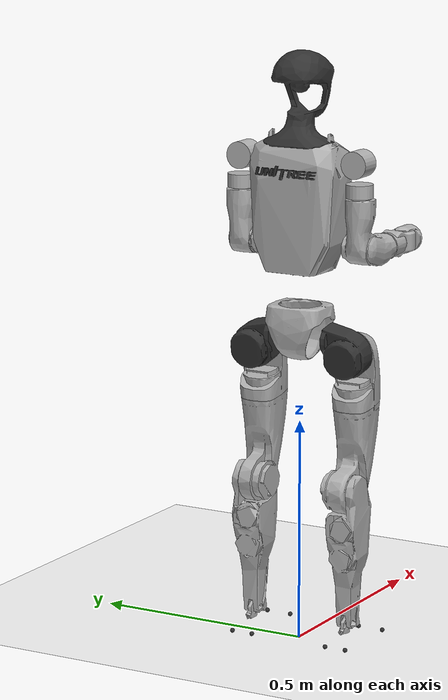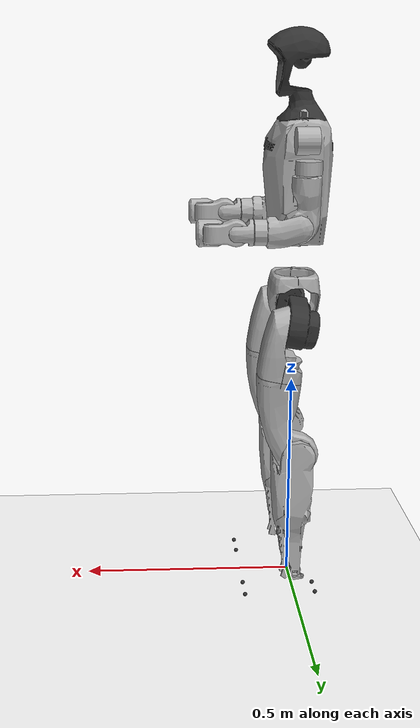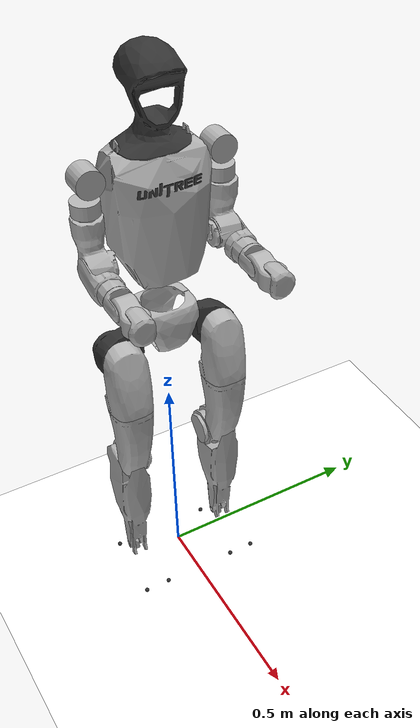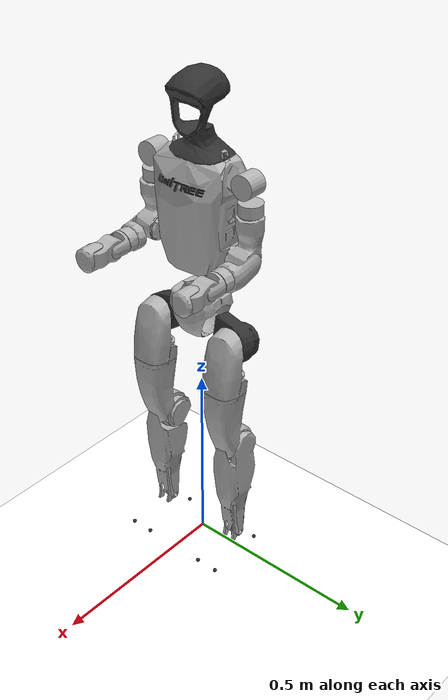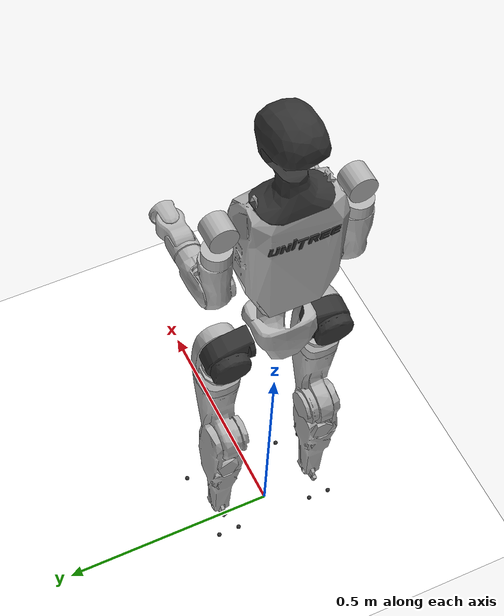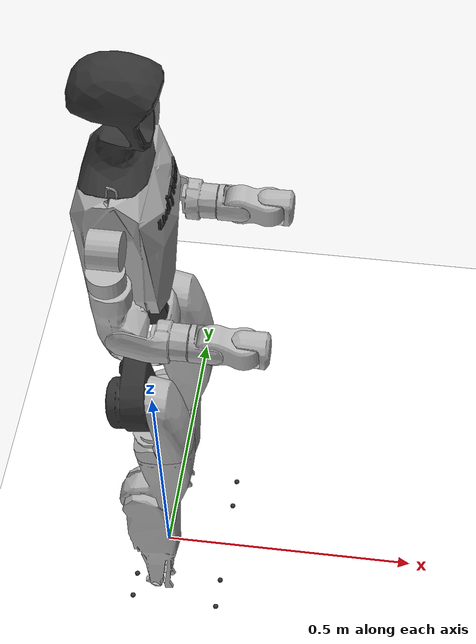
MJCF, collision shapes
<mujoco model="g1_29dof_whole_body">
  <!-- base on g1_29dof_rev_1_0 -->
  <compiler angle="radian" meshdir="../meshes"/>

  <statistic meansize="0.144785" extent="1.23314" center="0.025392 2.0634e-05 -0.245975"/>
  <default>
    <joint damping="0.001" armature="0.01" frictionloss="0.1"/>
  </default>

  <asset>
    <mesh name="pelvis" file="pelvis.STL"/>
    <mesh name="pelvis_contour_link" file="pelvis_contour_link.STL"/>
    <mesh name="left_hip_pitch_link" file="left_hip_pitch_link.STL"/>
    <mesh name="left_hip_roll_link" file="left_hip_roll_link.STL"/>
    <mesh name="left_hip_yaw_link" file="left_hip_yaw_link.STL"/>
    <mesh name="left_knee_link" file="left_knee_link.STL"/>
    <mesh name="left_ankle_pitch_link" file="left_ankle_pitch_link.STL"/>
    <mesh name="left_ankle_roll_link" file="left_ankle_roll_link.STL"/>
    <mesh name="right_hip_pitch_link" file="right_hip_pitch_link.STL"/>
    <mesh name="right_hip_roll_link" file="right_hip_roll_link.STL"/>
    <mesh name="right_hip_yaw_link" file="right_hip_yaw_link.STL"/>
    <mesh name="right_knee_link" file="right_knee_link.STL"/>
    <mesh name="right_ankle_pitch_link" file="right_ankle_pitch_link.STL"/>
    <mesh name="right_ankle_roll_link" file="right_ankle_roll_link.STL"/>
    <mesh name="waist_yaw_link" file="waist_yaw_link_rev_1_0.STL"/>
    <mesh name="waist_roll_link" file="waist_roll_link_rev_1_0.STL"/>
    <mesh name="torso_link" file="torso_link_rev_1_0.STL"/>
    <mesh name="logo_link" file="logo_link.STL"/>
    <mesh name="head_link" file="head_link.STL"/>
    <mesh name="left_shoulder_pitch_link" file="left_shoulder_pitch_link.STL"/>
    <mesh name="left_shoulder_roll_link" file="left_shoulder_roll_link.STL"/>
    <mesh name="left_shoulder_yaw_link" file="left_shoulder_yaw_link.STL"/>
    <mesh name="left_elbow_link" file="left_elbow_link.STL"/>
    <mesh name="left_wrist_roll_link" file="left_wrist_roll_link.STL"/>
    <mesh name="left_wrist_pitch_link" file="left_wrist_pitch_link.STL"/>
    <mesh name="left_wrist_yaw_link" file="left_wrist_yaw_link.STL"/>
    <mesh name="left_rubber_hand" file="left_rubber_hand.STL"/>
    <mesh name="right_shoulder_pitch_link" file="right_shoulder_pitch_link.STL"/>
    <mesh name="right_shoulder_roll_link" file="right_shoulder_roll_link.STL"/>
    <mesh name="right_shoulder_yaw_link" file="right_shoulder_yaw_link.STL"/>
    <mesh name="right_elbow_link" file="right_elbow_link.STL"/>
    <mesh name="right_wrist_roll_link" file="right_wrist_roll_link.STL"/>
    <mesh name="right_wrist_pitch_link" file="right_wrist_pitch_link.STL"/>
    <mesh name="right_wrist_yaw_link" file="right_wrist_yaw_link.STL"/>
    <mesh name="right_rubber_hand" file="right_rubber_hand.STL"/>
  </asset>

  <visual>
    <headlight diffuse="0.6 0.6 0.6" ambient="0.3 0.3 0.3" specular="0 0 0"/>
    <global azimuth="-130" elevation="-20"/>
  </visual>

   <asset>
    <texture type="skybox" builtin="gradient" rgb1="1 1 1" rgb2="1 1 1" width="512" height="3072"/>
    <texture type="2d" name="groundplane" builtin="checker" mark="edge" rgb1="1 1 1" rgb2="1 1 1"
      markrgb="0 0 0" width="300" height="300"/>
    <material name="groundplane" texture="groundplane" texuniform="true" texrepeat="5 5" reflectance="0.2"/>
  </asset>

  <worldbody>
    <light pos="0 0 1.5" dir="0 0 -1" directional="true"/>
    <geom name="floor" size="0 0 0.05" type="plane" material="groundplane"/>

    <body name="robot" pos="0 0 0.793">
      <inertial pos="0 0 -0.07605" quat="1 0 -0.000399148 0" mass="3.813" diaginertia="0.010549 0.0093089 0.0079184"/>

      <geom type="mesh" contype="0" conaffinity="0" group="1" density="0" rgba="0.2 0.2 0.2 1" mesh="pelvis"/>
      <geom type="mesh" contype="0" conaffinity="0" group="1" density="0" rgba="0.7 0.7 0.7 1" mesh="pelvis_contour_link"/>
      <geom type="mesh" rgba="0.7 0.7 0.7 1" mesh="pelvis_contour_link"/>
      <site name="imu_in_pelvis" size="0.01" pos="0.04525 0 -0.08339"/>
      <body name="left_hip_pitch_link" pos="0 0.064452 -0.1027">
        <inertial pos="0.002741 0.047791 -0.02606" quat="0.954862 0.293964 0.0302556 0.030122" mass="1.35" diaginertia="0.00181517 0.00153422 0.00116212"/>
        <joint name="left_hip_pitch_joint" pos="0 0 0" axis="0 1 0" range="-2.5307 2.8798" actuatorfrcrange="-88 88"/>
        <geom type="mesh" contype="0" conaffinity="0" group="1" density="0" rgba="0.2 0.2 0.2 1" mesh="left_hip_pitch_link"/>
        <geom type="mesh" rgba="0.2 0.2 0.2 1" mesh="left_hip_pitch_link"/>
        <body name="left_hip_roll_link" pos="0 0.052 -0.030465" quat="0.996179 0 -0.0873386 0">
          <inertial pos="0.029812 -0.001045 -0.087934" quat="0.977808 -1.97119e-05 0.205576 -0.0403793" mass="1.52" diaginertia="0.00254986 0.00241169 0.00148755"/>
          <joint name="left_hip_roll_joint" pos="0 0 0" axis="1 0 0" range="-0.5236 2.9671" actuatorfrcrange="-139 139"/>
          <geom type="mesh" contype="0" conaffinity="0" group="1" density="0" rgba="0.7 0.7 0.7 1" mesh="left_hip_roll_link"/>
          <geom type="mesh" rgba="0.7 0.7 0.7 1" mesh="left_hip_roll_link"/>
          <body name="left_hip_yaw_link" pos="0.025001 0 -0.12412">
            <inertial pos="-0.057709 -0.010981 -0.15078" quat="0.600598 0.15832 0.223482 0.751181" mass="1.702" diaginertia="0.00776166 0.00717575 0.00160139"/>
            <joint name="left_hip_yaw_joint" pos="0 0 0" axis="0 0 1" range="-2.7576 2.7576" actuatorfrcrange="-88 88"/>
            <geom type="mesh" contype="0" conaffinity="0" group="1" density="0" rgba="0.7 0.7 0.7 1" mesh="left_hip_yaw_link"/>
            <geom type="mesh" rgba="0.7 0.7 0.7 1" mesh="left_hip_yaw_link"/>
            <body name="left_knee_link" pos="-0.078273 0.0021489 -0.17734" quat="0.996179 0 0.0873386 0">
              <inertial pos="0.005457 0.003964 -0.12074" quat="0.923418 -0.0327699 0.0158246 0.382067" mass="1.932" diaginertia="0.0113804 0.0112778 0.00146458"/>
              <joint name="left_knee_joint" pos="0 0 0" axis="0 1 0" range="-0.087267 2.8798" actuatorfrcrange="-139 139"/>
              <geom type="mesh" contype="0" conaffinity="0" group="1" density="0" rgba="0.7 0.7 0.7 1" mesh="left_knee_link"/>
              <geom type="mesh" rgba="0.7 0.7 0.7 1" mesh="left_knee_link"/>
              <body name="left_ankle_pitch_link" pos="0 -9.4445e-05 -0.30001">
                <inertial pos="-0.007269 0 0.011137" quat="0.603053 0.369225 0.369225 0.603053" mass="0.074" diaginertia="1.89e-05 1.40805e-05 6.9195e-06"/>
                <joint name="left_ankle_pitch_joint" pos="0 0 0" axis="0 1 0" range="-0.87267 0.5236" actuatorfrcrange="-50 50"/>
                <geom type="mesh" contype="0" conaffinity="0" group="1" density="0" rgba="0.7 0.7 0.7 1" mesh="left_ankle_pitch_link"/>
                <geom type="mesh" rgba="0.7 0.7 0.7 1" mesh="left_ankle_pitch_link"/>
                <body name="left_ankle_roll_link" pos="0 0 -0.017558">
                  <inertial pos="0.026505 0 -0.016425" quat="-0.000481092 0.728482 -0.000618967 0.685065" mass="0.608" diaginertia="0.00167218 0.0016161 0.000217621"/>
                  <joint name="left_ankle_roll_joint" pos="0 0 0" axis="1 0 0" range="-0.2618 0.2618" actuatorfrcrange="-50 50"/>
                  <geom type="mesh" contype="0" conaffinity="0" group="1" density="0" rgba="0.2 0.2 0.2 1" mesh="left_ankle_roll_link"/>
                  <body name="bl_left_foot" pos="-0.05 0.025 -0.03">
                    <geom size="0.005" pos="0.0 0.0 0.0" rgba="0.2 0.2 0.2 1"/>
                  </body>
                  <body name="br_left_foot" pos="-0.05 -0.025 -0.03">
                    <geom size="0.005" pos="0.0 0.0 0.0" rgba="0.2 0.2 0.2 1"/>
                  </body>
                  <body name="fl_left_foot" pos="0.12 0.03 -0.03">
                    <geom size="0.005" pos="0.0 0.0 0.0" rgba="0.2 0.2 0.2 1"/>
                  </body>
                  <body name="fr_left_foot" pos="0.12 -0.03 -0.03">
                    <geom size="0.005" pos="0.0 0.0 0.0" rgba="0.2 0.2 0.2 1"/>
                  </body>
                </body>
              </body>
            </body>
          </body>
        </body>
      </body>
      <body name="right_hip_pitch_link" pos="0 -0.064452 -0.1027">
        <inertial pos="0.002741 -0.047791 -0.02606" quat="0.954862 -0.293964 0.0302556 -0.030122" mass="1.35" diaginertia="0.00181517 0.00153422 0.00116212"/>
        <joint name="right_hip_pitch_joint" pos="0 0 0" axis="0 1 0" range="-2.5307 2.8798" actuatorfrcrange="-88 88"/>
        <geom type="mesh" contype="0" conaffinity="0" group="1" density="0" rgba="0.2 0.2 0.2 1" mesh="right_hip_pitch_link"/>
        <geom type="mesh" rgba="0.2 0.2 0.2 1" mesh="right_hip_pitch_link"/>
        <body name="right_hip_roll_link" pos="0 -0.052 -0.030465" quat="0.996179 0 -0.0873386 0">
          <inertial pos="0.029812 0.001045 -0.087934" quat="0.977808 1.97119e-05 0.205576 0.0403793" mass="1.52" diaginertia="0.00254986 0.00241169 0.00148755"/>
          <joint name="right_hip_roll_joint" pos="0 0 0" axis="1 0 0" range="-2.9671 0.5236" actuatorfrcrange="-139 139"/>
          <geom type="mesh" contype="0" conaffinity="0" group="1" density="0" rgba="0.7 0.7 0.7 1" mesh="right_hip_roll_link"/>
          <geom type="mesh" rgba="0.7 0.7 0.7 1" mesh="right_hip_roll_link"/>
          <body name="right_hip_yaw_link" pos="0.025001 0 -0.12412">
            <inertial pos="-0.057709 0.010981 -0.15078" quat="0.751181 0.223482 0.15832 0.600598" mass="1.702" diaginertia="0.00776166 0.00717575 0.00160139"/>
            <joint name="right_hip_yaw_joint" pos="0 0 0" axis="0 0 1" range="-2.7576 2.7576" actuatorfrcrange="-88 88"/>
            <geom type="mesh" contype="0" conaffinity="0" group="1" density="0" rgba="0.7 0.7 0.7 1" mesh="right_hip_yaw_link"/>
            <geom type="mesh" rgba="0.7 0.7 0.7 1" mesh="right_hip_yaw_link"/>
            <body name="right_knee_link" pos="-0.078273 -0.0021489 -0.17734" quat="0.996179 0 0.0873386 0">
              <inertial pos="0.005457 -0.003964 -0.12074" quat="0.923439 0.0345276 0.0116333 -0.382012" mass="1.932" diaginertia="0.011374 0.0112843 0.00146452"/>
              <joint name="right_knee_joint" pos="0 0 0" axis="0 1 0" range="-0.087267 2.8798" actuatorfrcrange="-139 139"/>
              <geom type="mesh" contype="0" conaffinity="0" group="1" density="0" rgba="0.7 0.7 0.7 1" mesh="right_knee_link"/>
              <geom type="mesh" rgba="0.7 0.7 0.7 1" mesh="right_knee_link"/>
              <body name="right_ankle_pitch_link" pos="0 9.4445e-05 -0.30001">
                <inertial pos="-0.007269 0 0.011137" quat="0.603053 0.369225 0.369225 0.603053" mass="0.074" diaginertia="1.89e-05 1.40805e-05 6.9195e-06"/>
                <joint name="right_ankle_pitch_joint" pos="0 0 0" axis="0 1 0" range="-0.87267 0.5236" actuatorfrcrange="-50 50"/>
                <geom type="mesh" contype="0" conaffinity="0" group="1" density="0" rgba="0.7 0.7 0.7 1" mesh="right_ankle_pitch_link"/>
                <geom type="mesh" rgba="0.7 0.7 0.7 1" mesh="right_ankle_pitch_link"/>
                <body name="right_ankle_roll_link" pos="0 0 -0.017558">
                  <inertial pos="0.026505 0 -0.016425" quat="0.000481092 0.728482 0.000618967 0.685065" mass="0.608" diaginertia="0.00167218 0.0016161 0.000217621"/>
                  <joint name="right_ankle_roll_joint" pos="0 0 0" axis="1 0 0" range="-0.2618 0.2618" actuatorfrcrange="-50 50"/>
                  <geom type="mesh" contype="0" conaffinity="0" group="1" density="0" rgba="0.2 0.2 0.2 1" mesh="right_ankle_roll_link"/>
                  <body name="bl_right_foot" pos="-0.05 0.025 -0.03">
                    <geom size="0.005" pos="0.0 0.0 0.0" rgba="0.2 0.2 0.2 1"/>
                  </body>
                  <body name="br_right_foot" pos="-0.05 -0.025 -0.03">
                    <geom size="0.005" pos="0.0 0.0 0.0" rgba="0.2 0.2 0.2 1"/>
                  </body>
                  <body name="fl_right_foot" pos="0.12 0.03 -0.03">
                    <geom size="0.005" pos="0.0 0.0 0.0" rgba="0.2 0.2 0.2 1"/>
                  </body>
                  <body name="fr_right_foot" pos="0.12 -0.03 -0.03">
                    <geom size="0.005" pos="0.0 0.0 0.0" rgba="0.2 0.2 0.2 1"/>
                  </body>
                </body>
              </body>
            </body>
          </body>
        </body>
      </body>
      <body name="waist_yaw_link">
        <inertial pos="0.003494 0.000233 0.018034" quat="0.289697 0.591001 -0.337795 0.672821" mass="0.214" diaginertia="0.000163531 0.000107714 0.000102205"/>
        <joint name="waist_yaw_joint" pos="0 0 0" axis="0 0 1" range="-2.618 2.618" actuatorfrcrange="-88 88"/>
        <geom type="mesh" contype="0" conaffinity="0" group="1" density="0" rgba="0.7 0.7 0.7 1" mesh="waist_yaw_link"/>
        <body name="waist_roll_link" pos="-0.0039635 0 0.044">
          <inertial pos="0 2.3e-05 0" quat="0.5 0.5 -0.5 0.5" mass="0.086" diaginertia="8.245e-06 7.079e-06 6.339e-06"/>
          <joint name="waist_roll_joint" pos="0 0 0" axis="1 0 0" range="-0.52 0.52" actuatorfrcrange="-50 50"/>
          <geom type="mesh" contype="0" conaffinity="0" group="1" density="0" rgba="0.7 0.7 0.7 1" mesh="waist_roll_link"/>
          <body name="torso_link">
            <inertial pos="0.00203158 0.000339683 0.184568" quat="0.999803 -6.03319e-05 0.0198256 0.00131986" mass="7.818" diaginertia="0.121847 0.109825 0.0273735"/>
            <joint name="waist_pitch_joint" pos="0 0 0" axis="0 1 0" range="-0.52 0.52" actuatorfrcrange="-50 50"/>
            <geom type="mesh" contype="0" conaffinity="0" group="1" density="0" rgba="0.7 0.7 0.7 1" mesh="torso_link"/>
            <geom type="mesh" rgba="0.7 0.7 0.7 1" mesh="torso_link"/>
            <geom pos="0.0039635 0 -0.044" quat="1 0 0 0" type="mesh" contype="0" conaffinity="0" group="1" density="0" rgba="0.2 0.2 0.2 1" mesh="logo_link"/>
            <geom pos="0.0039635 0 -0.044" quat="1 0 0 0" type="mesh" rgba="0.2 0.2 0.2 1" mesh="logo_link"/>
            <geom pos="0.0039635 0 -0.044" type="mesh" contype="0" conaffinity="0" group="1" density="0" rgba="0.2 0.2 0.2 1" mesh="head_link"/>
            <geom pos="0.0039635 0 -0.044" type="mesh" rgba="0.2 0.2 0.2 1" mesh="head_link"/>
            <site name="imu_in_torso" size="0.01" pos="-0.03959 -0.00224 0.14792"/>
            <body name="left_shoulder_pitch_link" pos="0.0039563 0.10022 0.24778" quat="0.990264 0.139201 1.38722e-05 -9.86868e-05">
              <inertial pos="0 0.035892 -0.011628" quat="0.654152 0.0130458 -0.326267 0.68225" mass="0.718" diaginertia="0.000465864 0.000432842 0.000406394"/>
              <joint name="left_shoulder_pitch_joint" pos="0 0 0" axis="0 1 0" range="-3.0892 2.6704" actuatorfrcrange="-25 25"/>
              <geom type="mesh" contype="0" conaffinity="0" group="1" density="0" rgba="0.7 0.7 0.7 1" mesh="left_shoulder_pitch_link"/>
              <geom size="0.03 0.025" pos="0 0.04 -0.01" quat="0.707107 0 0.707107 0" type="cylinder" rgba="0.7 0.7 0.7 1"/>
              <body name="left_shoulder_roll_link" pos="0 0.038 -0.013831" quat="0.990268 -0.139172 0 0">
                <inertial pos="-0.000227 0.00727 -0.063243" quat="0.701256 -0.0196223 -0.00710317 0.712604" mass="0.643" diaginertia="0.000691311 0.000618011 0.000388977"/>
                <joint name="left_shoulder_roll_joint" pos="0 0 0" axis="1 0 0" range="-1.5882 2.2515" actuatorfrcrange="-25 25"/>
                <geom type="mesh" contype="0" conaffinity="0" group="1" density="0" rgba="0.7 0.7 0.7 1" mesh="left_shoulder_roll_link"/>
                <geom size="0.03 0.015" pos="-0.004 0.006 -0.053" type="cylinder" rgba="0.7 0.7 0.7 1"/>
                <body name="left_shoulder_yaw_link" pos="0 0.00624 -0.1032">
                  <inertial pos="0.010773 -0.002949 -0.072009" quat="0.716879 -0.0964829 -0.0679942 0.687134" mass="0.734" diaginertia="0.00106187 0.00103217 0.000400661"/>
                  <joint name="left_shoulder_yaw_joint" pos="0 0 0" axis="0 0 1" range="-2.618 2.618" actuatorfrcrange="-25 25"/>
                  <geom type="mesh" contype="0" conaffinity="0" group="1" density="0" rgba="0.7 0.7 0.7 1" mesh="left_shoulder_yaw_link"/>
                  <geom type="mesh" rgba="0.7 0.7 0.7 1" mesh="left_shoulder_yaw_link"/>
                  <body name="left_elbow_link" pos="0.015783 0 -0.080518">
                    <inertial pos="0.064956 0.004454 -0.010062" quat="0.541765 0.636132 0.388821 0.388129" mass="0.6" diaginertia="0.000443035 0.000421612 0.000259353"/>
                    <joint name="left_elbow_joint" pos="0 0 0" axis="0 1 0" range="-1.0472 2.0944" actuatorfrcrange="-25 25"/>
                    <geom type="mesh" contype="0" conaffinity="0" group="1" density="0" rgba="0.7 0.7 0.7 1" mesh="left_elbow_link"/>
                    <geom type="mesh" rgba="0.7 0.7 0.7 1" mesh="left_elbow_link"/>
                    <body name="left_wrist_roll_link" pos="0.1 0.00188791 -0.01">
                      <inertial pos="0.0171394 0.000537591 4.8864e-07" quat="0.575338 0.411667 -0.574906 0.411094" mass="0.085445" diaginertia="5.48211e-05 4.96646e-05 3.57798e-05"/>
                      <joint name="left_wrist_roll_joint" pos="0 0 0" axis="1 0 0" range="-1.97222 1.97222" actuatorfrcrange="-25 25"/>
                      <geom type="mesh" contype="0" conaffinity="0" group="1" density="0" rgba="0.7 0.7 0.7 1" mesh="left_wrist_roll_link"/>
                      <geom type="mesh" rgba="0.7 0.7 0.7 1" mesh="left_wrist_roll_link"/>
                      <body name="left_wrist_pitch_link" pos="0.038 0 0">
                        <inertial pos="0.0229999 -0.00111685 -0.00111658" quat="0.249998 0.661363 0.293036 0.643608" mass="0.48405" diaginertia="0.000430353 0.000429873 0.000164648"/>
                        <joint name="left_wrist_pitch_joint" pos="0 0 0" axis="0 1 0" range="-1.61443 1.61443" actuatorfrcrange="-5 5"/>
                        <geom type="mesh" contype="0" conaffinity="0" group="1" density="0" rgba="0.7 0.7 0.7 1" mesh="left_wrist_pitch_link"/>
                        <geom type="mesh" rgba="0.7 0.7 0.7 1" mesh="left_wrist_pitch_link"/>
                        <body name="left_wrist_yaw_link" pos="0.046 0 0">
                          <inertial pos="0.0708244 0.000191745 0.00161742" quat="0.510571 0.526295 0.468078 0.493188" mass="0.254576" diaginertia="0.000646113 0.000559993 0.000147566"/>
                          <joint name="left_wrist_yaw_joint" pos="0 0 0" axis="0 0 1" range="-1.61443 1.61443" actuatorfrcrange="-5 5"/>
                          <geom type="mesh" contype="0" conaffinity="0" group="1" density="0" rgba="0.7 0.7 0.7 1" mesh="left_wrist_yaw_link"/>
                          <geom type="mesh" rgba="0.7 0.7 0.7 1" mesh="left_wrist_yaw_link"/>
                          <geom pos="0.0415 0.003 0" quat="1 0 0 0" type="mesh" contype="0" conaffinity="0" group="1" density="0" rgba="0.7 0.7 0.7 1" mesh="left_rubber_hand"/>
                        </body>
                      </body>
                    </body>
                  </body>
                </body>
              </body>
            </body>
            <body name="right_shoulder_pitch_link" pos="0.0039563 -0.10021 0.24778" quat="0.990264 -0.139201 1.38722e-05 9.86868e-05">
              <inertial pos="0 -0.035892 -0.011628" quat="0.68225 -0.326267 0.0130458 0.654152" mass="0.718" diaginertia="0.000465864 0.000432842 0.000406394"/>
              <joint name="right_shoulder_pitch_joint" pos="0 0 0" axis="0 1 0" range="-3.0892 2.6704" actuatorfrcrange="-25 25"/>
              <geom type="mesh" contype="0" conaffinity="0" group="1" density="0" rgba="0.7 0.7 0.7 1" mesh="right_shoulder_pitch_link"/>
              <geom size="0.03 0.025" pos="0 -0.04 -0.01" quat="0.707107 0 0.707107 0" type="cylinder" rgba="0.7 0.7 0.7 1"/>
              <body name="right_shoulder_roll_link" pos="0 -0.038 -0.013831" quat="0.990268 0.139172 0 0">
                <inertial pos="-0.000227 -0.00727 -0.063243" quat="0.712604 -0.00710317 -0.0196223 0.701256" mass="0.643" diaginertia="0.000691311 0.000618011 0.000388977"/>
                <joint name="right_shoulder_roll_joint" pos="0 0 0" axis="1 0 0" range="-2.2515 1.5882" actuatorfrcrange="-25 25"/>
                <geom type="mesh" contype="0" conaffinity="0" group="1" density="0" rgba="0.7 0.7 0.7 1" mesh="right_shoulder_roll_link"/>
                <geom size="0.03 0.015" pos="-0.004 -0.006 -0.053" type="cylinder" rgba="0.7 0.7 0.7 1"/>
                <body name="right_shoulder_yaw_link" pos="0 -0.00624 -0.1032">
                  <inertial pos="0.010773 0.002949 -0.072009" quat="0.687134 -0.0679942 -0.0964829 0.716879" mass="0.734" diaginertia="0.00106187 0.00103217 0.000400661"/>
                  <joint name="right_shoulder_yaw_joint" pos="0 0 0" axis="0 0 1" range="-2.618 2.618" actuatorfrcrange="-25 25"/>
                  <geom type="mesh" contype="0" conaffinity="0" group="1" density="0" rgba="0.7 0.7 0.7 1" mesh="right_shoulder_yaw_link"/>
                  <geom type="mesh" rgba="0.7 0.7 0.7 1" mesh="right_shoulder_yaw_link"/>
                  <body name="right_elbow_link" pos="0.015783 0 -0.080518">
                    <inertial pos="0.064956 -0.004454 -0.010062" quat="0.388129 0.388821 0.636132 0.541765" mass="0.6" diaginertia="0.000443035 0.000421612 0.000259353"/>
                    <joint name="right_elbow_joint" pos="0 0 0" axis="0 1 0" range="-1.0472 2.0944" actuatorfrcrange="-25 25"/>
                    <geom type="mesh" contype="0" conaffinity="0" group="1" density="0" rgba="0.7 0.7 0.7 1" mesh="right_elbow_link"/>
                    <geom type="mesh" rgba="0.7 0.7 0.7 1" mesh="right_elbow_link"/>
                    <body name="right_wrist_roll_link" pos="0.1 -0.00188791 -0.01">
                      <inertial pos="0.0171394 -0.000537591 4.8864e-07" quat="0.411667 0.575338 -0.411094 0.574906" mass="0.085445" diaginertia="5.48211e-05 4.96646e-05 3.57798e-05"/>
                      <joint name="right_wrist_roll_joint" pos="0 0 0" axis="1 0 0" range="-1.97222 1.97222" actuatorfrcrange="-25 25"/>
                      <geom type="mesh" contype="0" conaffinity="0" group="1" density="0" rgba="0.7 0.7 0.7 1" mesh="right_wrist_roll_link"/>
                      <geom type="mesh" rgba="0.7 0.7 0.7 1" mesh="right_wrist_roll_link"/>
                      <body name="right_wrist_pitch_link" pos="0.038 0 0">
                        <inertial pos="0.0229999 0.00111685 -0.00111658" quat="0.643608 0.293036 0.661363 0.249998" mass="0.48405" diaginertia="0.000430353 0.000429873 0.000164648"/>
                        <joint name="right_wrist_pitch_joint" pos="0 0 0" axis="0 1 0" range="-1.61443 1.61443" actuatorfrcrange="-5 5"/>
                        <geom type="mesh" contype="0" conaffinity="0" group="1" density="0" rgba="0.7 0.7 0.7 1" mesh="right_wrist_pitch_link"/>
                        <geom type="mesh" rgba="0.7 0.7 0.7 1" mesh="right_wrist_pitch_link"/>
                        <body name="right_wrist_yaw_link" pos="0.046 0 0">
                          <inertial pos="0.0708244 -0.000191745 0.00161742" quat="0.493188 0.468078 0.526295 0.510571" mass="0.254576" diaginertia="0.000646113 0.000559993 0.000147566"/>
                          <joint name="right_wrist_yaw_joint" pos="0 0 0" axis="0 0 1" range="-1.61443 1.61443" actuatorfrcrange="-5 5"/>
                          <geom type="mesh" contype="0" conaffinity="0" group="1" density="0" rgba="0.7 0.7 0.7 1" mesh="right_wrist_yaw_link"/>
                          <geom type="mesh" rgba="0.7 0.7 0.7 1" mesh="right_wrist_yaw_link"/>
                          <geom pos="0.0415 -0.003 0" quat="1 0 0 0" type="mesh" contype="0" conaffinity="0" group="1" density="0" rgba="0.7 0.7 0.7 1" mesh="right_rubber_hand"/>
                        </body>
                      </body>
                    </body>
                  </body>
                </body>
              </body>
            </body>
          </body>
        </body>
      </body>
    </body>
  </worldbody>

  <actuator>
    <motor name="left_hip_pitch_joint" joint="left_hip_pitch_joint"/>
    <motor name="left_hip_roll_joint" joint="left_hip_roll_joint"/>
    <motor name="left_hip_yaw_joint" joint="left_hip_yaw_joint"/>
    <motor name="left_knee_joint" joint="left_knee_joint"/>
    <motor name="left_ankle_pitch_joint" joint="left_ankle_pitch_joint"/>
    <motor name="left_ankle_roll_joint" joint="left_ankle_roll_joint"/>
    <motor name="right_hip_pitch_joint" joint="right_hip_pitch_joint"/>
    <motor name="right_hip_roll_joint" joint="right_hip_roll_joint"/>
    <motor name="right_hip_yaw_joint" joint="right_hip_yaw_joint"/>
    <motor name="right_knee_joint" joint="right_knee_joint"/>
    <motor name="right_ankle_pitch_joint" joint="right_ankle_pitch_joint"/>
    <motor name="right_ankle_roll_joint" joint="right_ankle_roll_joint"/>
    <motor name="waist_yaw_joint" joint="waist_yaw_joint"/>
    <motor name="waist_roll_joint" joint="waist_roll_joint"/>
    <motor name="waist_pitch_joint" joint="waist_pitch_joint"/>
    <motor name="left_shoulder_pitch_joint" joint="left_shoulder_pitch_joint"/>
    <motor name="left_shoulder_roll_joint" joint="left_shoulder_roll_joint"/>
    <motor name="left_shoulder_yaw_joint" joint="left_shoulder_yaw_joint"/>
    <motor name="left_elbow_joint" joint="left_elbow_joint"/>
    <motor name="left_wrist_roll_joint" joint="left_wrist_roll_joint"/>
    <motor name="left_wrist_pitch_joint" joint="left_wrist_pitch_joint"/>
    <motor name="left_wrist_yaw_joint" joint="left_wrist_yaw_joint"/>
    <motor name="right_shoulder_pitch_joint" joint="right_shoulder_pitch_joint"/>
    <motor name="right_shoulder_roll_joint" joint="right_shoulder_roll_joint"/>
    <motor name="right_shoulder_yaw_joint" joint="right_shoulder_yaw_joint"/>
    <motor name="right_elbow_joint" joint="right_elbow_joint"/>
    <motor name="right_wrist_roll_joint" joint="right_wrist_roll_joint"/>
    <motor name="right_wrist_pitch_joint" joint="right_wrist_pitch_joint"/>
    <motor name="right_wrist_yaw_joint" joint="right_wrist_yaw_joint"/>
  </actuator>

  <sensor>
    <gyro name="imu-torso-angular-velocity" site="imu_in_torso" noise="5e-4" cutoff="34.9"/>
    <accelerometer name="imu-torso-linear-acceleration" site="imu_in_torso" noise="1e-2" cutoff="157"/>
    <gyro name="imu-pelvis-angular-velocity" site="imu_in_pelvis" noise="5e-4" cutoff="34.9"/>
    <accelerometer name="imu-pelvis-linear-acceleration" site="imu_in_pelvis" noise="1e-2" cutoff="157"/>
  </sensor>

</mujoco>
